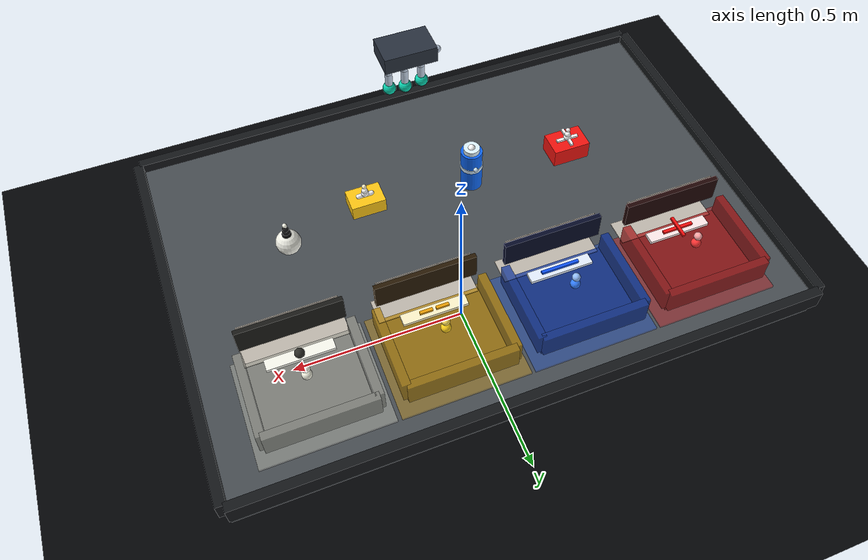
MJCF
<mujoco model="aegis_dextriage">
  <compiler angle="radian" autolimits="true" assetdir="../assets"/>
  <option timestep="0.002" gravity="0 0 -9.81" integrator="RK4" solver="Newton" iterations="60" tolerance="1e-8"/>

  <visual>
    <global offwidth="1280" offheight="720"/>
    <quality shadowsize="2048"/>
    <map znear="0.01" zfar="8"/>
  </visual>

  <default>
    <default class="hand_joint">
      <joint type="hinge" limited="true" range="-0.15 1.15" damping="0.45" armature="0.002"/>
      <position kp="18" kv="2.2" ctrlrange="-0.15 1.15" forcerange="-8 8"/>
    </default>
    <default class="finger_geom">
      <geom type="capsule" size="0.010" rgba="0.76 0.82 0.90 1" friction="1.1 0.02 0.002" condim="4" density="700"/>
    </default>
    <default class="medication">
      <geom friction="1.3 0.02 0.002" condim="4" density="260" solref="0.004 1" solimp="0.92 0.96 0.001"/>
    </default>
  </default>

  <asset>
    <texture name="grid" type="2d" builtin="checker" width="512" height="512" rgb1="0.10 0.12 0.14" rgb2="0.14 0.16 0.18"/>
    <texture name="emergency_label_tex" type="2d" file="labels/emergency_label.png"/>
    <texture name="antibiotic_label_tex" type="2d" file="labels/antibiotic_label.png"/>
    <texture name="pain_relief_label_tex" type="2d" file="labels/pain_relief_label.png"/>
    <texture name="inspect_label_tex" type="2d" file="labels/inspect_label.png"/>
    <mesh name="label_board_front_mesh" file="meshes/label_board_front.obj"/>
    <mesh name="label_board_top_mesh" file="meshes/label_board_top.obj"/>
    <material name="floor_mat" texture="grid" texrepeat="4 4" rgba="0.10 0.12 0.14 1"/>
    <material name="table_mat" rgba="0.28 0.30 0.32 1"/>
    <material name="palm_mat" rgba="0.16 0.19 0.24 1"/>
    <material name="finger_mat" rgba="0.72 0.78 0.86 1"/>
    <material name="fingertip_mat" rgba="0.08 0.88 0.74 1"/>
    <material name="emergency_mat" rgba="0.95 0.08 0.06 1"/>
    <material name="antibiotic_mat" rgba="0.05 0.40 0.95 1"/>
    <material name="pain_mat" rgba="1.00 0.78 0.08 1"/>
    <material name="inspect_mat" rgba="0.94 0.94 0.90 1"/>
    <material name="tray_emergency_mat" rgba="0.65 0.04 0.04 0.72"/>
    <material name="tray_antibiotic_mat" rgba="0.02 0.18 0.62 0.72"/>
    <material name="tray_pain_mat" rgba="0.72 0.52 0.02 0.72"/>
    <material name="tray_inspect_mat" rgba="0.62 0.62 0.58 0.72"/>
    <material name="emergency_label_mat" texture="emergency_label_tex" rgba="1 1 1 1"/>
    <material name="antibiotic_label_mat" texture="antibiotic_label_tex" rgba="1 1 1 1"/>
    <material name="pain_relief_label_mat" texture="pain_relief_label_tex" rgba="1 1 1 1"/>
    <material name="inspect_label_mat" texture="inspect_label_tex" rgba="1 1 1 1"/>
  </asset>

  <worldbody>
    <geom name="floor" type="plane" size="3 3 0.05" material="floor_mat"/>
    <light name="key_light" pos="0 -1.5 2.4" dir="0 0.45 -1" diffuse="1.25 1.25 1.20" specular="0.25 0.25 0.25"/>
    <light name="rim_light" pos="-1.1 0.9 1.6" dir="0.5 -0.35 -1" diffuse="0.65 0.70 0.86"/>
    <light name="tray_fill_light" pos="0.55 -0.55 1.35" dir="-0.35 0.35 -1" diffuse="0.48 0.50 0.52" specular="0.08 0.08 0.08"/>

    <camera name="demo_camera" pos="0.82 -1.05 1.08" xyaxes="0.82 0.57 0 -0.39 0.56 0.73"/>
    <camera name="topdown_camera" pos="0 0 1.82" xyaxes="1 0 0 0 1 0"/>

    <geom name="zone_emergency_pad" type="box" pos="-0.48 0.31 0.399" size="0.155 0.135 0.003" rgba="0.95 0.05 0.05 0.34" contype="0" conaffinity="0"/>
    <geom name="zone_antibiotic_pad" type="box" pos="-0.16 0.31 0.399" size="0.155 0.135 0.003" rgba="0.05 0.32 0.95 0.34" contype="0" conaffinity="0"/>
    <geom name="zone_pain_relief_pad" type="box" pos="0.16 0.31 0.399" size="0.155 0.135 0.003" rgba="0.95 0.68 0.02 0.34" contype="0" conaffinity="0"/>
    <geom name="zone_inspect_pad" type="box" pos="0.48 0.31 0.399" size="0.155 0.135 0.003" rgba="0.90 0.90 0.82 0.34" contype="0" conaffinity="0"/>
    <geom name="zone_emergency_text_label" type="mesh" mesh="label_board_top_mesh" pos="-0.48 0.165 0.407" material="emergency_label_mat" contype="0" conaffinity="0"/>
    <geom name="zone_antibiotic_text_label" type="mesh" mesh="label_board_top_mesh" pos="-0.16 0.165 0.407" material="antibiotic_label_mat" contype="0" conaffinity="0"/>
    <geom name="zone_pain_relief_text_label" type="mesh" mesh="label_board_top_mesh" pos="0.16 0.165 0.407" material="pain_relief_label_mat" contype="0" conaffinity="0"/>
    <geom name="zone_inspect_text_label" type="mesh" mesh="label_board_top_mesh" pos="0.48 0.165 0.407" material="inspect_label_mat" contype="0" conaffinity="0"/>

    <body name="triage_table" pos="0 0 0.36">
      <geom name="table_top" type="box" size="0.72 0.50 0.035" material="table_mat" friction="1.2 0.02 0.002"/>
      <geom name="table_front_edge" type="box" pos="0 -0.505 0.035" size="0.72 0.012 0.025" rgba="0.08 0.09 0.10 1"/>
      <geom name="table_back_edge" type="box" pos="0 0.505 0.035" size="0.72 0.012 0.025" rgba="0.08 0.09 0.10 1"/>
      <geom name="table_left_edge" type="box" pos="-0.725 0 0.035" size="0.012 0.50 0.025" rgba="0.08 0.09 0.10 1"/>
      <geom name="table_right_edge" type="box" pos="0.725 0 0.035" size="0.012 0.50 0.025" rgba="0.08 0.09 0.10 1"/>
    </body>

    <body name="tray_emergency" pos="-0.48 0.31 0.425">
      <geom name="tray_emergency_base" type="box" size="0.13 0.105 0.010" material="tray_emergency_mat"/>
      <geom name="tray_emergency_back" type="box" pos="0 0.105 0.030" size="0.13 0.010 0.030" material="tray_emergency_mat"/>
      <geom name="tray_emergency_left" type="box" pos="-0.13 0 0.030" size="0.010 0.105 0.030" material="tray_emergency_mat"/>
      <geom name="tray_emergency_right" type="box" pos="0.13 0 0.030" size="0.010 0.105 0.030" material="tray_emergency_mat"/>
      <geom name="tray_emergency_label_backboard" type="box" pos="0 -0.128 0.074" size="0.124 0.006 0.034" rgba="0.12 0.02 0.02 1" contype="0" conaffinity="0"/>
      <geom name="tray_emergency_text_label" type="mesh" mesh="label_board_front_mesh" pos="0 -0.142 0.074" material="emergency_label_mat" contype="0" conaffinity="0"/>
      <geom name="tray_emergency_label_plate" type="box" pos="0 -0.075 0.022" size="0.080 0.014 0.004" rgba="1.00 0.92 0.92 1" contype="0" conaffinity="0"/>
      <geom name="tray_emergency_label_mark_x" type="box" pos="0 -0.075 0.029" size="0.040 0.004 0.003" rgba="0.95 0.05 0.05 1" contype="0" conaffinity="0"/>
      <geom name="tray_emergency_label_mark_y" type="box" pos="0 -0.075 0.033" size="0.004 0.030 0.003" rgba="0.95 0.05 0.05 1" contype="0" conaffinity="0"/>
      <site name="tray_emergency_site" pos="0 0 0.06" size="0.012" rgba="1 0.2 0.2 1"/>
      <site name="tray_emergency_target_site" pos="0 0 0.085" size="0.010" rgba="1 0.65 0.65 1"/>
    </body>

    <body name="tray_antibiotic" pos="-0.16 0.31 0.425">
      <geom name="tray_antibiotic_base" type="box" size="0.13 0.105 0.010" material="tray_antibiotic_mat"/>
      <geom name="tray_antibiotic_back" type="box" pos="0 0.105 0.030" size="0.13 0.010 0.030" material="tray_antibiotic_mat"/>
      <geom name="tray_antibiotic_left" type="box" pos="-0.13 0 0.030" size="0.010 0.105 0.030" material="tray_antibiotic_mat"/>
      <geom name="tray_antibiotic_right" type="box" pos="0.13 0 0.030" size="0.010 0.105 0.030" material="tray_antibiotic_mat"/>
      <geom name="tray_antibiotic_label_backboard" type="box" pos="0 -0.128 0.074" size="0.124 0.006 0.034" rgba="0.02 0.04 0.15 1" contype="0" conaffinity="0"/>
      <geom name="tray_antibiotic_text_label" type="mesh" mesh="label_board_front_mesh" pos="0 -0.142 0.074" material="antibiotic_label_mat" contype="0" conaffinity="0"/>
      <geom name="tray_antibiotic_label_plate" type="box" pos="0 -0.075 0.022" size="0.080 0.014 0.004" rgba="0.90 0.94 1.00 1" contype="0" conaffinity="0"/>
      <geom name="tray_antibiotic_label_mark" type="box" pos="0 -0.075 0.029" size="0.048 0.004 0.003" rgba="0.05 0.32 0.95 1" contype="0" conaffinity="0"/>
      <site name="tray_antibiotic_site" pos="0 0 0.06" size="0.012" rgba="0.2 0.5 1 1"/>
      <site name="tray_antibiotic_target_site" pos="0 0 0.085" size="0.010" rgba="0.58 0.75 1 1"/>
    </body>

    <body name="tray_pain_relief" pos="0.16 0.31 0.425">
      <geom name="tray_pain_relief_base" type="box" size="0.13 0.105 0.010" material="tray_pain_mat"/>
      <geom name="tray_pain_relief_back" type="box" pos="0 0.105 0.030" size="0.13 0.010 0.030" material="tray_pain_mat"/>
      <geom name="tray_pain_relief_left" type="box" pos="-0.13 0 0.030" size="0.010 0.105 0.030" material="tray_pain_mat"/>
      <geom name="tray_pain_relief_right" type="box" pos="0.13 0 0.030" size="0.010 0.105 0.030" material="tray_pain_mat"/>
      <geom name="tray_pain_relief_label_backboard" type="box" pos="0 -0.128 0.074" size="0.124 0.006 0.034" rgba="0.16 0.10 0.02 1" contype="0" conaffinity="0"/>
      <geom name="tray_pain_relief_text_label" type="mesh" mesh="label_board_front_mesh" pos="0 -0.142 0.074" material="pain_relief_label_mat" contype="0" conaffinity="0"/>
      <geom name="tray_pain_relief_label_plate" type="box" pos="0 -0.075 0.022" size="0.080 0.014 0.004" rgba="1.00 0.96 0.80 1" contype="0" conaffinity="0"/>
      <geom name="tray_pain_relief_label_mark_left" type="box" pos="-0.020 -0.075 0.029" size="0.016 0.004 0.003" rgba="0.92 0.62 0.02 1" contype="0" conaffinity="0"/>
      <geom name="tray_pain_relief_label_mark_right" type="box" pos="0.020 -0.075 0.029" size="0.016 0.004 0.003" rgba="0.92 0.62 0.02 1" contype="0" conaffinity="0"/>
      <site name="tray_pain_relief_site" pos="0 0 0.06" size="0.012" rgba="1 0.82 0.1 1"/>
      <site name="tray_pain_relief_target_site" pos="0 0 0.085" size="0.010" rgba="1 0.88 0.35 1"/>
    </body>

    <body name="tray_inspect" pos="0.48 0.31 0.425">
      <geom name="tray_inspect_base" type="box" size="0.13 0.105 0.010" material="tray_inspect_mat"/>
      <geom name="tray_inspect_back" type="box" pos="0 0.105 0.030" size="0.13 0.010 0.030" material="tray_inspect_mat"/>
      <geom name="tray_inspect_left" type="box" pos="-0.13 0 0.030" size="0.010 0.105 0.030" material="tray_inspect_mat"/>
      <geom name="tray_inspect_right" type="box" pos="0.13 0 0.030" size="0.010 0.105 0.030" material="tray_inspect_mat"/>
      <geom name="tray_inspect_label_backboard" type="box" pos="0 -0.128 0.074" size="0.124 0.006 0.034" rgba="0.10 0.10 0.09 1" contype="0" conaffinity="0"/>
      <geom name="tray_inspect_text_label" type="mesh" mesh="label_board_front_mesh" pos="0 -0.142 0.074" material="inspect_label_mat" contype="0" conaffinity="0"/>
      <geom name="tray_inspect_label_plate" type="box" pos="0 -0.075 0.022" size="0.080 0.014 0.004" rgba="0.98 0.98 0.94 1" contype="0" conaffinity="0"/>
      <geom name="tray_inspect_label_mark" type="sphere" pos="0 -0.075 0.030" size="0.012" rgba="0.18 0.18 0.16 1" contype="0" conaffinity="0"/>
      <site name="tray_inspect_site" pos="0 0 0.06" size="0.012" rgba="0.95 0.95 0.88 1"/>
      <site name="tray_inspect_target_site" pos="0 0 0.085" size="0.010" rgba="1 1 0.94 1"/>
    </body>

    <body name="red_emergency_box" pos="-0.36 -0.14 0.425">
      <freejoint name="red_emergency_box_freejoint"/>
      <geom name="red_emergency_box_geom" class="medication" type="box" size="0.050 0.035 0.025" material="emergency_mat"/>
      <geom name="red_emergency_cross_x" type="box" pos="0 0 0.029" size="0.030 0.004 0.003" rgba="1 1 1 1" contype="0" conaffinity="0"/>
      <geom name="red_emergency_cross_y" type="box" pos="0 0 0.033" size="0.004 0.030 0.003" rgba="1 1 1 1" contype="0" conaffinity="0"/>
      <site name="red_emergency_box_site" pos="0 0 0.035" size="0.010" rgba="1 1 1 1"/>
      <site name="red_emergency_box_grasp_site" pos="0 0 0.045" size="0.008" rgba="1 1 1 1"/>
      <site name="red_emergency_box_label_site" pos="0 0 0.060" size="0.006" rgba="1 0.95 0.95 1"/>
    </body>

    <body name="blue_antibiotic_bottle" pos="-0.08 -0.13 0.465">
      <freejoint name="blue_antibiotic_bottle_freejoint"/>
      <geom name="blue_antibiotic_bottle_geom" class="medication" type="cylinder" size="0.028 0.060" material="antibiotic_mat"/>
      <geom name="blue_antibiotic_cap_geom" type="cylinder" pos="0 0 0.066" size="0.021 0.007" rgba="0.88 0.96 1 1" contype="0" conaffinity="0"/>
      <geom name="blue_antibiotic_band_geom" type="cylinder" pos="0 0 0.010" size="0.029 0.006" rgba="0.82 0.92 1 1" contype="0" conaffinity="0"/>
      <site name="blue_antibiotic_bottle_site" pos="0 0 0.070" size="0.010" rgba="1 1 1 1"/>
      <site name="blue_antibiotic_bottle_grasp_site" pos="0 0 0.030" size="0.008" rgba="0.82 0.92 1 1"/>
      <site name="blue_antibiotic_bottle_label_site" pos="0 0.030 0.020" size="0.006" rgba="0.82 0.92 1 1"/>
    </body>

    <body name="yellow_pain_relief_box" pos="0.20 -0.16 0.420">
      <freejoint name="yellow_pain_relief_box_freejoint"/>
      <geom name="yellow_pain_relief_box_geom" class="medication" type="box" size="0.045 0.032 0.020" material="pain_mat"/>
      <geom name="yellow_pain_pill_marker" type="capsule" fromto="-0.018 0 0.024 0.018 0 0.024" size="0.006" rgba="1 1 1 1" contype="0" conaffinity="0"/>
      <site name="yellow_pain_relief_box_site" pos="0 0 0.030" size="0.010" rgba="1 1 1 1"/>
      <site name="yellow_pain_relief_box_grasp_site" pos="0 0 0.040" size="0.008" rgba="1 1 1 1"/>
      <site name="yellow_pain_relief_box_label_site" pos="0 0 0.055" size="0.006" rgba="1 0.96 0.80 1"/>
    </body>

    <body name="white_unknown_marker" pos="0.42 -0.10 0.425">
      <freejoint name="white_unknown_marker_freejoint"/>
      <geom name="white_unknown_marker_geom" class="medication" type="sphere" size="0.032" material="inspect_mat"/>
      <geom name="white_unknown_inspection_dot" type="sphere" pos="0 0 0.030" size="0.012" rgba="0.04 0.04 0.04 1" contype="0" conaffinity="0"/>
      <site name="white_unknown_marker_site" pos="0 0 0.040" size="0.010" rgba="0.1 0.1 0.1 1"/>
      <site name="white_unknown_marker_grasp_site" pos="0 0 0.050" size="0.008" rgba="0.1 0.1 0.1 1"/>
      <site name="white_unknown_marker_label_site" pos="0 0 0.064" size="0.006" rgba="1 1 0.94 1"/>
    </body>

    <body name="dexterous_hand" pos="0 -0.38 0.68">
      <freejoint name="hand_base_freejoint"/>
      <camera name="wrist_camera" pos="0 -0.10 0.08" xyaxes="1 0 0 0 0.82 0.57"/>
      <geom name="palm_geom" type="box" size="0.070 0.045 0.022" material="palm_mat" friction="1.0 0.02 0.002"/>
      <site name="palm_site" pos="0 0 0" size="0.012" rgba="0.08 0.88 0.74 1"/>

      <body name="index_finger_base" pos="-0.045 -0.020 -0.020">
        <joint name="index_knuckle" class="hand_joint" axis="1 0 0"/>
        <geom name="index_proximal_geom" class="finger_geom" fromto="0 0 0 0 0 -0.060" material="finger_mat"/>
        <body name="index_finger_tip" pos="0 0 -0.060">
          <joint name="index_distal" class="hand_joint" axis="1 0 0" range="-0.10 1.25"/>
          <geom name="index_distal_geom" class="finger_geom" fromto="0 0 0 0 0 -0.045" material="finger_mat"/>
          <site name="index_touch_site" pos="0 0 -0.050" type="sphere" size="0.018" rgba="0.08 0.88 0.74 0.80"/>
          <geom name="index_tip_geom" type="sphere" pos="0 0 -0.050" size="0.017" material="fingertip_mat" friction="1.7 0.02 0.002"/>
        </body>
      </body>

      <body name="middle_finger_base" pos="0.000 -0.024 -0.020">
        <joint name="middle_knuckle" class="hand_joint" axis="1 0 0"/>
        <geom name="middle_proximal_geom" class="finger_geom" fromto="0 0 0 0 0 -0.065" material="finger_mat"/>
        <body name="middle_finger_tip" pos="0 0 -0.065">
          <joint name="middle_distal" class="hand_joint" axis="1 0 0" range="-0.10 1.25"/>
          <geom name="middle_distal_geom" class="finger_geom" fromto="0 0 0 0 0 -0.050" material="finger_mat"/>
          <site name="middle_touch_site" pos="0 0 -0.055" type="sphere" size="0.018" rgba="0.08 0.88 0.74 0.80"/>
          <geom name="middle_tip_geom" type="sphere" pos="0 0 -0.055" size="0.017" material="fingertip_mat" friction="1.7 0.02 0.002"/>
        </body>
      </body>

      <body name="ring_finger_base" pos="0.045 -0.020 -0.020">
        <joint name="ring_knuckle" class="hand_joint" axis="1 0 0"/>
        <geom name="ring_proximal_geom" class="finger_geom" fromto="0 0 0 0 0 -0.060" material="finger_mat"/>
        <body name="ring_finger_tip" pos="0 0 -0.060">
          <joint name="ring_distal" class="hand_joint" axis="1 0 0" range="-0.10 1.25"/>
          <geom name="ring_distal_geom" class="finger_geom" fromto="0 0 0 0 0 -0.045" material="finger_mat"/>
          <site name="ring_touch_site" pos="0 0 -0.050" type="sphere" size="0.018" rgba="0.08 0.88 0.74 0.80"/>
          <geom name="ring_tip_geom" type="sphere" pos="0 0 -0.050" size="0.017" material="fingertip_mat" friction="1.7 0.02 0.002"/>
        </body>
      </body>

      <body name="thumb_base" pos="-0.078 0.018 -0.006" euler="0 0 -0.65">
        <joint name="thumb_knuckle" class="hand_joint" axis="0 1 0" range="-0.20 1.05"/>
        <geom name="thumb_proximal_geom" class="finger_geom" fromto="0 0 0 0.040 0 -0.030" material="finger_mat"/>
        <body name="thumb_tip" pos="0.040 0 -0.030">
          <joint name="thumb_distal" class="hand_joint" axis="0 1 0" range="-0.20 1.20"/>
          <geom name="thumb_distal_geom" class="finger_geom" fromto="0 0 0 0.040 0 -0.030" material="finger_mat"/>
          <site name="thumb_touch_site" pos="0.045 0 -0.034" type="sphere" size="0.018" rgba="0.08 0.88 0.74 0.80"/>
          <geom name="thumb_tip_geom" type="sphere" pos="0.045 0 -0.034" size="0.017" material="fingertip_mat" friction="1.7 0.02 0.002"/>
        </body>
      </body>
    </body>
  </worldbody>

  <actuator>
    <position name="index_knuckle_act" joint="index_knuckle" class="hand_joint"/>
    <position name="index_distal_act" joint="index_distal" class="hand_joint"/>
    <position name="middle_knuckle_act" joint="middle_knuckle" class="hand_joint"/>
    <position name="middle_distal_act" joint="middle_distal" class="hand_joint"/>
    <position name="ring_knuckle_act" joint="ring_knuckle" class="hand_joint"/>
    <position name="ring_distal_act" joint="ring_distal" class="hand_joint"/>
    <position name="thumb_knuckle_act" joint="thumb_knuckle" class="hand_joint"/>
    <position name="thumb_distal_act" joint="thumb_distal" class="hand_joint"/>
  </actuator>

  <sensor>
    <touch name="index_touch" site="index_touch_site"/>
    <touch name="middle_touch" site="middle_touch_site"/>
    <touch name="ring_touch" site="ring_touch_site"/>
    <touch name="thumb_touch" site="thumb_touch_site"/>

    <jointpos name="index_knuckle_pos" joint="index_knuckle"/>
    <jointpos name="index_distal_pos" joint="index_distal"/>
    <jointpos name="middle_knuckle_pos" joint="middle_knuckle"/>
    <jointpos name="middle_distal_pos" joint="middle_distal"/>
    <jointpos name="ring_knuckle_pos" joint="ring_knuckle"/>
    <jointpos name="ring_distal_pos" joint="ring_distal"/>
    <jointpos name="thumb_knuckle_pos" joint="thumb_knuckle"/>
    <jointpos name="thumb_distal_pos" joint="thumb_distal"/>

    <jointvel name="index_knuckle_vel" joint="index_knuckle"/>
    <jointvel name="middle_knuckle_vel" joint="middle_knuckle"/>
    <jointvel name="ring_knuckle_vel" joint="ring_knuckle"/>
    <jointvel name="thumb_knuckle_vel" joint="thumb_knuckle"/>

    <framepos name="red_emergency_box_pos" objtype="body" objname="red_emergency_box"/>
    <framepos name="blue_antibiotic_bottle_pos" objtype="body" objname="blue_antibiotic_bottle"/>
    <framepos name="yellow_pain_relief_box_pos" objtype="body" objname="yellow_pain_relief_box"/>
    <framepos name="white_unknown_marker_pos" objtype="body" objname="white_unknown_marker"/>
    <framepos name="red_emergency_box_grasp_pos" objtype="site" objname="red_emergency_box_grasp_site"/>
    <framepos name="blue_antibiotic_bottle_grasp_pos" objtype="site" objname="blue_antibiotic_bottle_grasp_site"/>
    <framepos name="yellow_pain_relief_box_grasp_pos" objtype="site" objname="yellow_pain_relief_box_grasp_site"/>
    <framepos name="white_unknown_marker_grasp_pos" objtype="site" objname="white_unknown_marker_grasp_site"/>
    <framepos name="hand_palm_pos" objtype="site" objname="palm_site"/>
    <framepos name="emergency_tray_pos" objtype="site" objname="tray_emergency_site"/>
    <framepos name="antibiotic_tray_pos" objtype="site" objname="tray_antibiotic_site"/>
    <framepos name="pain_tray_pos" objtype="site" objname="tray_pain_relief_site"/>
    <framepos name="inspect_tray_pos" objtype="site" objname="tray_inspect_site"/>
    <framepos name="tray_emergency_target_pos" objtype="site" objname="tray_emergency_target_site"/>
    <framepos name="tray_antibiotic_target_pos" objtype="site" objname="tray_antibiotic_target_site"/>
    <framepos name="tray_pain_relief_target_pos" objtype="site" objname="tray_pain_relief_target_site"/>
    <framepos name="tray_inspect_target_pos" objtype="site" objname="tray_inspect_target_site"/>
  </sensor>
</mujoco>
  <include file="../../../assets/Futurist/futurist.urdf"/>
